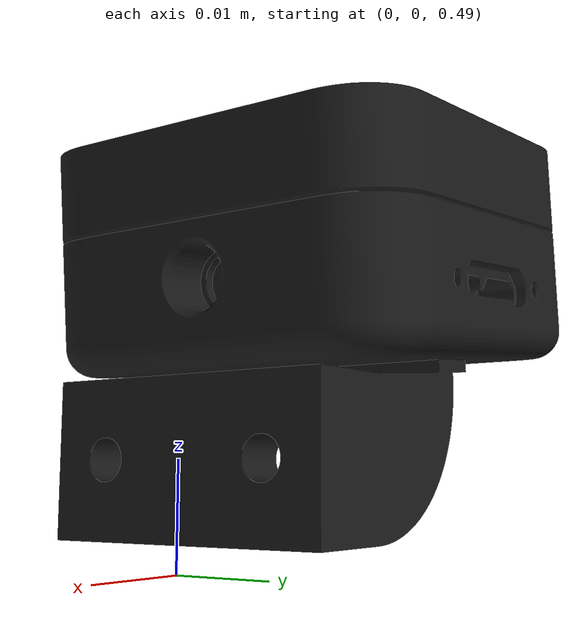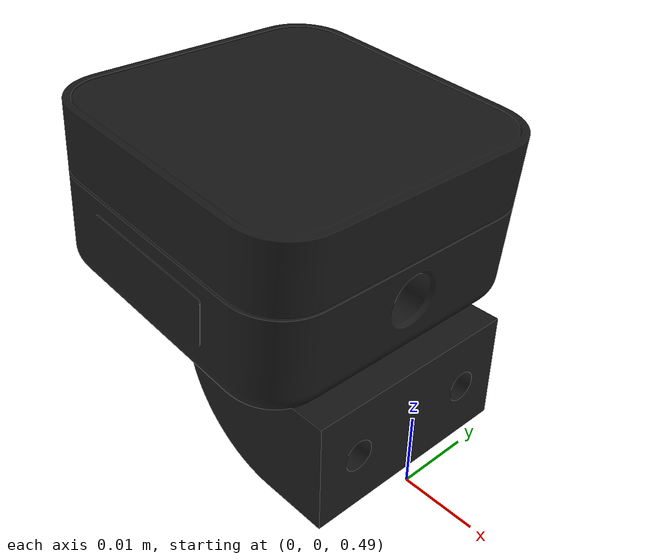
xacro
<?xml version="1.0"?>
<robot xmlns:xacro="http://wiki.ros.org/xacro" name="test_gripper">

  <xacro:arg name="ros_namespace" default="" />

   <link name="world"/>

  <!-- table -->

  <!-- camera mount -->
  <link name="camera_mount">
    <visual>
      <origin xyz="0 0 0" rpy="0 0 0"/>
      <geometry>
        <mesh filename="package://closed_loop_dalsa_description/meshes/camera_mount_95.stl"/>
      </geometry>
      <material name="black"><color rgba="0.1 0.1 0.1 1.0"/></material>
    </visual>
    <collision>
      <geometry>
        <mesh filename="package://closed_loop_dalsa_description/meshes/camera_mount_95.stl"/>
      </geometry>
    </collision>
  </link>

  <joint name="camera_mount_joint" type="fixed">
     <parent link="world"/>
     <child link="camera_mount"/>
     <origin xyz="0 0 0.5" rpy="0 ${-pi/2} 0"/>
   </joint>

  <!-- Camera -->
  <link name="camera_link">
    <visual>
      <geometry>
        <mesh filename="package://closed_loop_dalsa_description/meshes/realsense_D405.stl"/>
      </geometry>
      <material name="black"><color rgba="0.1 0.1 0.1 1.0"/></material>
    </visual>
    <collision>
      <geometry>
        <mesh filename="package://closed_loop_dalsa_description/meshes/realsense_D405.stl"/>
      </geometry>
    </collision>
    <inertial>
      <mass value="0.1"/>
      <inertia ixx="0.0001" ixy="0" ixz="0" iyy="0.0001" iyz="0" izz="0.0001"/>
    </inertial>
  </link>

  <joint name="camera_joint" type="fixed">
    <parent link="camera_mount"/>
    <child link="camera_link"/>
    <origin xyz="0.01 0 0.023" rpy="0 ${95*pi/180} 0"/>
  </joint>

  <link name="camera_link_optical"/>

  <joint name="camera_optical_joint" type="fixed">
    <parent link="camera_link"/>
    <child link="camera_link_optical"/>
    <origin xyz="0 0 0" rpy=" 0 ${-pi/2} 0"/>
  </joint>

  <gazebo reference="camera_link_optical">
    <sensor name="wrist_camera" type="rgbd_camera">
        <camera>
          <horizontal_fov>1.047</horizontal_fov>
          <image>
            <width>320</width>
            <height>240</height>
          </image>
          <clip><near>0.1</near><far>10</far></clip>
          <optical_frame_id>camera_link_optical</optical_frame_id>
        </camera>
        <always_on>1</always_on>
        <update_rate>10</update_rate>
        <visualize>true</visualize>
        <topic>wrist_camera</topic>
    </sensor>
  </gazebo>

</robot>
